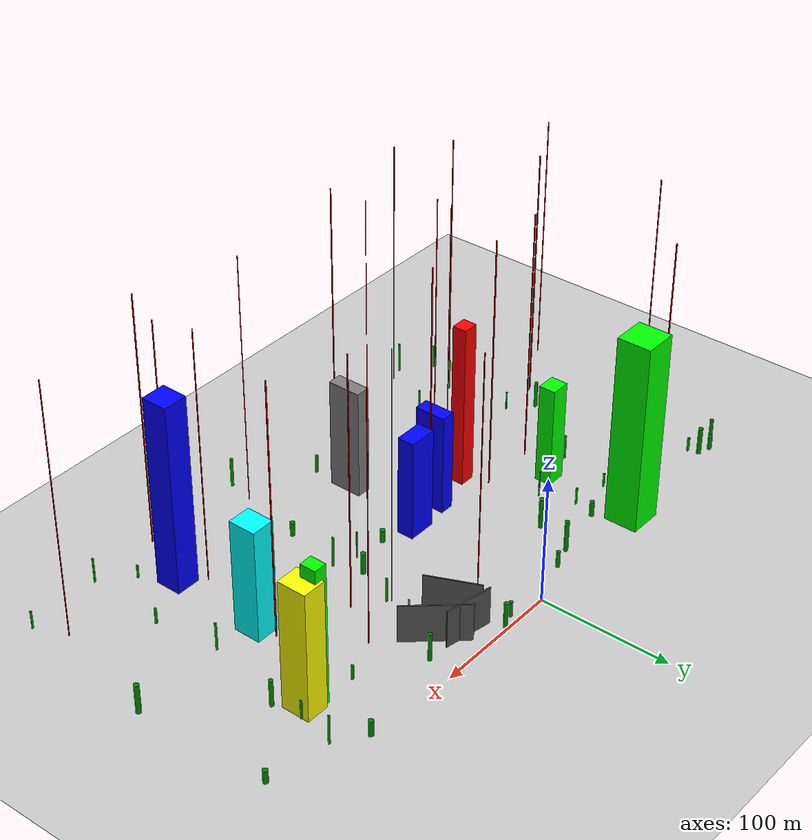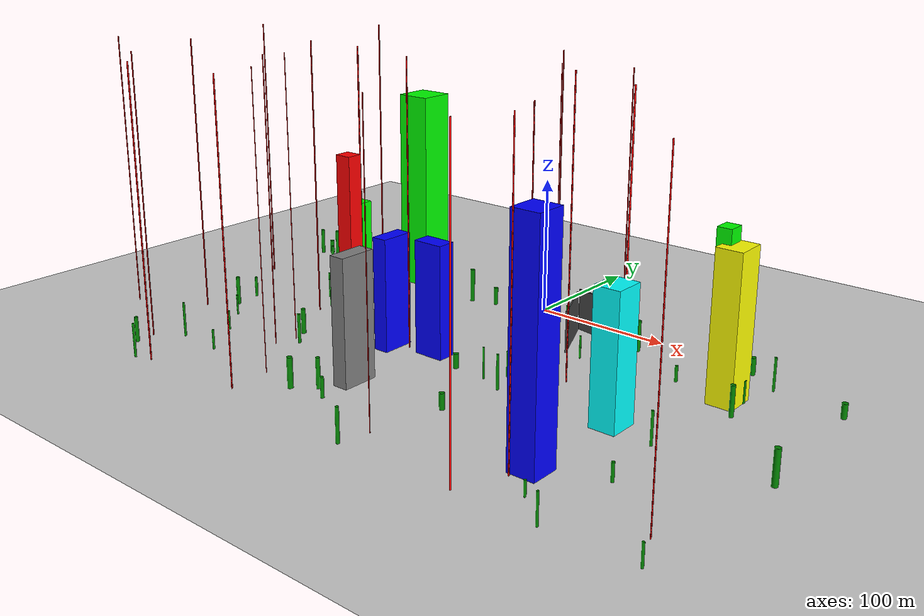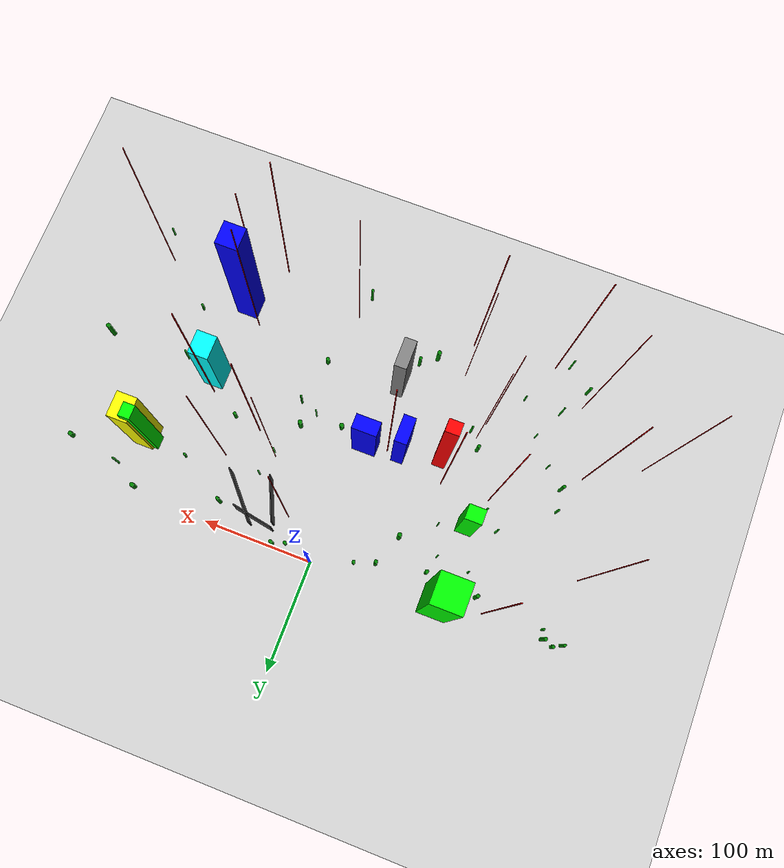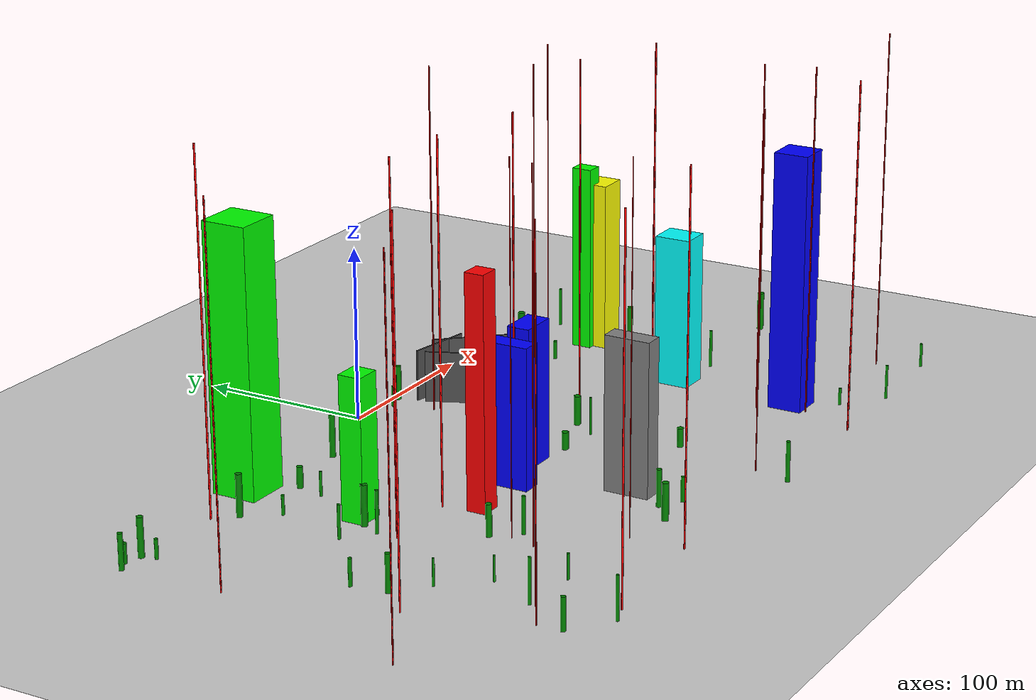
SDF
<sdf version="1.9">
 <world name="obstacles">
  <model name="ground_plane">
   <static>1</static>
   <link name="link">
    <collision name="collision">
     <geometry><plane><normal>0 0 1</normal><size>2000 2000</size></plane></geometry>
    </collision>
    <visual name="visual">
     <geometry><plane><normal>0 0 1</normal><size>2000 2000</size></plane></geometry>
     <material>
      <ambient>0.8 0.8 0.8 1</ambient>
      <diffuse>0.8 0.8 0.8 1</diffuse>
      <specular>0.8 0.8 0.8 1</specular>
     </material>
    </visual>
   </link>
  </model>
  <model name="Skyscraper_0">
   <pose>178 -54 50.5 0 0 0</pose>
   <static>1</static>
   <link name="link">
    <collision name="collision"><geometry><box><size>18 22 101</size></box></geometry></collision>
    <visual name="visual">
     <geometry><box><size>18 22 101</size></box></geometry>
     <material><ambient>1 1 0 1</ambient><diffuse>1 1 0 1</diffuse></material>
    </visual>
   </link>
  </model>
  <model name="Skyscraper_4">
   <pose>-17 -182 43.5 0 0 0</pose>
   <static>1</static>
   <link name="link">
    <collision name="collision"><geometry><box><size>11 26 87</size></box></geometry></collision>
    <visual name="visual">
     <geometry><box><size>11 26 87</size></box></geometry>
     <material><ambient>0.5 0.5 0.5 1</ambient><diffuse>0.5 0.5 0.5 1</diffuse></material>
    </visual>
   </link>
  </model>
  <model name="Skyscraper_7">
   <pose>-39 -123 40.0 0 0 0</pose>
   <static>1</static>
   <link name="link">
    <collision name="collision"><geometry><box><size>11 24 80</size></box></geometry></collision>
    <visual name="visual">
     <geometry><box><size>11 24 80</size></box></geometry>
     <material><ambient>0 0 1 1</ambient><diffuse>0 0 1 1</diffuse></material>
    </visual>
   </link>
  </model>
  <model name="Skyscraper_9">
   <pose>139 -202 75.0 0 0 0</pose>
   <static>1</static>
   <link name="link">
    <collision name="collision"><geometry><box><size>19 20 150</size></box></geometry></collision>
    <visual name="visual">
     <geometry><box><size>19 20 150</size></box></geometry>
     <material><ambient>0 0 1 1</ambient><diffuse>0 0 1 1</diffuse></material>
    </visual>
   </link>
  </model>
  <model name="Skyscraper_16">
   <pose>170 -51 55.5 0 0 0</pose>
   <static>1</static>
   <link name="link">
    <collision name="collision"><geometry><box><size>10 12 111</size></box></geometry></collision>
    <visual name="visual">
     <geometry><box><size>10 12 111</size></box></geometry>
     <material><ambient>0 1 0 1</ambient><diffuse>0 1 0 1</diffuse></material>
    </visual>
   </link>
  </model>
  <model name="Skyscraper_17">
   <pose>142 -128 44.5 0 0 0</pose>
   <static>1</static>
   <link name="link">
    <collision name="collision"><geometry><box><size>18 21 89</size></box></geometry></collision>
    <visual name="visual">
     <geometry><box><size>18 21 89</size></box></geometry>
     <material><ambient>0 1 1 1</ambient><diffuse>0 1 1 1</diffuse></material>
    </visual>
   </link>
  </model>
  <model name="Skyscraper_18">
   <pose>-114 -6 75.0 0 0 0</pose>
   <static>1</static>
   <link name="link">
    <collision name="collision"><geometry><box><size>26 26 150</size></box></geometry></collision>
    <visual name="visual">
     <geometry><box><size>26 26 150</size></box></geometry>
     <material><ambient>0 1 0 1</ambient><diffuse>0 1 0 1</diffuse></material>
    </visual>
   </link>
  </model>
  <model name="Skyscraper_19">
   <pose>-75 -126 65.0 0 0 0</pose>
   <static>1</static>
   <link name="link">
    <collision name="collision"><geometry><box><size>12 11 130</size></box></geometry></collision>
    <visual name="visual">
     <geometry><box><size>12 11 130</size></box></geometry>
     <material><ambient>1 0 0 1</ambient><diffuse>1 0 0 1</diffuse></material>
    </visual>
   </link>
  </model>
  <model name="Skyscraper_21">
   <pose>-116 -78 40.0 0 0 0</pose>
   <static>1</static>
   <link name="link">
    <collision name="collision"><geometry><box><size>15 13 80</size></box></geometry></collision>
    <visual name="visual">
     <geometry><box><size>15 13 80</size></box></geometry>
     <material><ambient>0 1 0 1</ambient><diffuse>0 1 0 1</diffuse></material>
    </visual>
   </link>
  </model>
  <model name="Skyscraper_24">
   <pose>-8 -115 40.0 0 0 0</pose>
   <static>1</static>
   <link name="link">
    <collision name="collision"><geometry><box><size>22 13 80</size></box></geometry></collision>
    <visual name="visual">
     <geometry><box><size>22 13 80</size></box></geometry>
     <material><ambient>0 0 1 1</ambient><diffuse>0 0 1 1</diffuse></material>
    </visual>
   </link>
  </model>
  <model name="Spire_3">
   <pose>-200 -156 100.0 0 0 0</pose>
   <static>1</static>
   <link name="link">
    <collision name="collision">
     <geometry><cylinder><radius>0.44581631200741345</radius><length>200</length></cylinder></geometry>
    </collision>
    <visual name="visual">
     <geometry><cylinder><radius>0.44581631200741345</radius><length>200</length></cylinder></geometry>
     <material><ambient>1 0 0 1</ambient><diffuse>1 0 0 1</diffuse></material>
    </visual>
   </link>
  </model>
  <model name="Spire_4">
   <pose>-224 -69 100.0 0 0 0</pose>
   <static>1</static>
   <link name="link">
    <collision name="collision">
     <geometry><cylinder><radius>0.3867186266921738</radius><length>200</length></cylinder></geometry>
    </collision>
    <visual name="visual">
     <geometry><cylinder><radius>0.3867186266921738</radius><length>200</length></cylinder></geometry>
     <material><ambient>1 0 0 1</ambient><diffuse>1 0 0 1</diffuse></material>
    </visual>
   </link>
  </model>
  <model name="Spire_7">
   <pose>133 -214 100.0 0 0 0</pose>
   <static>1</static>
   <link name="link">
    <collision name="collision">
     <geometry><cylinder><radius>0.4003074017150695</radius><length>200</length></cylinder></geometry>
    </collision>
    <visual name="visual">
     <geometry><cylinder><radius>0.4003074017150695</radius><length>200</length></cylinder></geometry>
     <material><ambient>1 0 0 1</ambient><diffuse>1 0 0 1</diffuse></material>
    </visual>
   </link>
  </model>
  <model name="Spire_10">
   <pose>106 -62 100.0 0 0 0</pose>
   <static>1</static>
   <link name="link">
    <collision name="collision">
     <geometry><cylinder><radius>0.33962730395507773</radius><length>200</length></cylinder></geometry>
    </collision>
    <visual name="visual">
     <geometry><cylinder><radius>0.33962730395507773</radius><length>200</length></cylinder></geometry>
     <material><ambient>1 0 0 1</ambient><diffuse>1 0 0 1</diffuse></material>
    </visual>
   </link>
  </model>
  <model name="Spire_14">
   <pose>-28 -118 100.0 0 0 0</pose>
   <static>1</static>
   <link name="link">
    <collision name="collision">
     <geometry><cylinder><radius>0.45911367101460715</radius><length>200</length></cylinder></geometry>
    </collision>
    <visual name="visual">
     <geometry><cylinder><radius>0.45911367101460715</radius><length>200</length></cylinder></geometry>
     <material><ambient>1 0 0 1</ambient><diffuse>1 0 0 1</diffuse></material>
    </visual>
   </link>
  </model>
  <model name="Spire_15">
   <pose>-70 -210 100.0 0 0 0</pose>
   <static>1</static>
   <link name="link">
    <collision name="collision">
     <geometry><cylinder><radius>0.21747525304132187</radius><length>200</length></cylinder></geometry>
    </collision>
    <visual name="visual">
     <geometry><cylinder><radius>0.21747525304132187</radius><length>200</length></cylinder></geometry>
     <material><ambient>1 0 0 1</ambient><diffuse>1 0 0 1</diffuse></material>
    </visual>
   </link>
  </model>
  <model name="Spire_16">
   <pose>-83 -107 100.0 0 0 0</pose>
   <static>1</static>
   <link name="link">
    <collision name="collision">
     <geometry><cylinder><radius>0.4890352460882555</radius><length>200</length></cylinder></geometry>
    </collision>
    <visual name="visual">
     <geometry><cylinder><radius>0.4890352460882555</radius><length>200</length></cylinder></geometry>
     <material><ambient>1 0 0 1</ambient><diffuse>1 0 0 1</diffuse></material>
    </visual>
   </link>
  </model>
  <model name="Spire_17">
   <pose>-145 -246 100.0 0 0 0</pose>
   <static>1</static>
   <link name="link">
    <collision name="collision">
     <geometry><cylinder><radius>0.47034292058402727</radius><length>200</length></cylinder></geometry>
    </collision>
    <visual name="visual">
     <geometry><cylinder><radius>0.47034292058402727</radius><length>200</length></cylinder></geometry>
     <material><ambient>1 0 0 1</ambient><diffuse>1 0 0 1</diffuse></material>
    </visual>
   </link>
  </model>
  <model name="Spire_19">
   <pose>-128 -108 100.0 0 0 0</pose>
   <static>1</static>
   <link name="link">
    <collision name="collision">
     <geometry><cylinder><radius>0.45270289470616354</radius><length>200</length></cylinder></geometry>
    </collision>
    <visual name="visual">
     <geometry><cylinder><radius>0.45270289470616354</radius><length>200</length></cylinder></geometry>
     <material><ambient>1 0 0 1</ambient><diffuse>1 0 0 1</diffuse></material>
    </visual>
   </link>
  </model>
  <model name="Spire_20">
   <pose>-248 -183 100.0 0 0 0</pose>
   <static>1</static>
   <link name="link">
    <collision name="collision">
     <geometry><cylinder><radius>0.34875254827759905</radius><length>200</length></cylinder></geometry>
    </collision>
    <visual name="visual">
     <geometry><cylinder><radius>0.34875254827759905</radius><length>200</length></cylinder></geometry>
     <material><ambient>1 0 0 1</ambient><diffuse>1 0 0 1</diffuse></material>
    </visual>
   </link>
  </model>
  <model name="Spire_21">
   <pose>139 -113 100.0 0 0 0</pose>
   <static>1</static>
   <link name="link">
    <collision name="collision">
     <geometry><cylinder><radius>0.48218072428795306</radius><length>200</length></cylinder></geometry>
    </collision>
    <visual name="visual">
     <geometry><cylinder><radius>0.48218072428795306</radius><length>200</length></cylinder></geometry>
     <material><ambient>1 0 0 1</ambient><diffuse>1 0 0 1</diffuse></material>
    </visual>
   </link>
  </model>
  <model name="Spire_23">
   <pose>-155 -12 100.0 0 0 0</pose>
   <static>1</static>
   <link name="link">
    <collision name="collision">
     <geometry><cylinder><radius>0.4816834138203816</radius><length>200</length></cylinder></geometry>
    </collision>
    <visual name="visual">
     <geometry><cylinder><radius>0.4816834138203816</radius><length>200</length></cylinder></geometry>
     <material><ambient>1 0 0 1</ambient><diffuse>1 0 0 1</diffuse></material>
    </visual>
   </link>
  </model>
  <model name="Spire_24">
   <pose>86 -94 100.0 0 0 0</pose>
   <static>1</static>
   <link name="link">
    <collision name="collision">
     <geometry><cylinder><radius>0.4521577670168428</radius><length>200</length></cylinder></geometry>
    </collision>
    <visual name="visual">
     <geometry><cylinder><radius>0.4521577670168428</radius><length>200</length></cylinder></geometry>
     <material><ambient>1 0 0 1</ambient><diffuse>1 0 0 1</diffuse></material>
    </visual>
   </link>
  </model>
  <model name="Spire_30">
   <pose>-103 -173 100.0 0 0 0</pose>
   <static>1</static>
   <link name="link">
    <collision name="collision">
     <geometry><cylinder><radius>0.29753795313489706</radius><length>200</length></cylinder></geometry>
    </collision>
    <visual name="visual">
     <geometry><cylinder><radius>0.29753795313489706</radius><length>200</length></cylinder></geometry>
     <material><ambient>1 0 0 1</ambient><diffuse>1 0 0 1</diffuse></material>
    </visual>
   </link>
  </model>
  <model name="Spire_32">
   <pose>224 -218 100.0 0 0 0</pose>
   <static>1</static>
   <link name="link">
    <collision name="collision">
     <geometry><cylinder><radius>0.3545172343501649</radius><length>200</length></cylinder></geometry>
    </collision>
    <visual name="visual">
     <geometry><cylinder><radius>0.3545172343501649</radius><length>200</length></cylinder></geometry>
     <material><ambient>1 0 0 1</ambient><diffuse>1 0 0 1</diffuse></material>
    </visual>
   </link>
  </model>
  <model name="Spire_33">
   <pose>-180 -219 100.0 0 0 0</pose>
   <static>1</static>
   <link name="link">
    <collision name="collision">
     <geometry><cylinder><radius>0.3727092924935774</radius><length>200</length></cylinder></geometry>
    </collision>
    <visual name="visual">
     <geometry><cylinder><radius>0.3727092924935774</radius><length>200</length></cylinder></geometry>
     <material><ambient>1 0 0 1</ambient><diffuse>1 0 0 1</diffuse></material>
    </visual>
   </link>
  </model>
  <model name="Spire_36">
   <pose>-68 -240 100.0 0 0 0</pose>
   <static>1</static>
   <link name="link">
    <collision name="collision">
     <geometry><cylinder><radius>0.4473573558580615</radius><length>200</length></cylinder></geometry>
    </collision>
    <visual name="visual">
     <geometry><cylinder><radius>0.4473573558580615</radius><length>200</length></cylinder></geometry>
     <material><ambient>1 0 0 1</ambient><diffuse>1 0 0 1</diffuse></material>
    </visual>
   </link>
  </model>
  <model name="Spire_41">
   <pose>64 -77 100.0 0 0 0</pose>
   <static>1</static>
   <link name="link">
    <collision name="collision">
     <geometry><cylinder><radius>0.24775819546895705</radius><length>200</length></cylinder></geometry>
    </collision>
    <visual name="visual">
     <geometry><cylinder><radius>0.24775819546895705</radius><length>200</length></cylinder></geometry>
     <material><ambient>1 0 0 1</ambient><diffuse>1 0 0 1</diffuse></material>
    </visual>
   </link>
  </model>
  <model name="Spire_42">
   <pose>119 -246 100.0 0 0 0</pose>
   <static>1</static>
   <link name="link">
    <collision name="collision">
     <geometry><cylinder><radius>0.46672014287727004</radius><length>200</length></cylinder></geometry>
    </collision>
    <visual name="visual">
     <geometry><cylinder><radius>0.46672014287727004</radius><length>200</length></cylinder></geometry>
     <material><ambient>1 0 0 1</ambient><diffuse>1 0 0 1</diffuse></material>
    </visual>
   </link>
  </model>
  <model name="Spire_43">
   <pose>32 -30 100.0 0 0 0</pose>
   <static>1</static>
   <link name="link">
    <collision name="collision">
     <geometry><cylinder><radius>0.382958132884067</radius><length>200</length></cylinder></geometry>
    </collision>
    <visual name="visual">
     <geometry><cylinder><radius>0.382958132884067</radius><length>200</length></cylinder></geometry>
     <material><ambient>1 0 0 1</ambient><diffuse>1 0 0 1</diffuse></material>
    </visual>
   </link>
  </model>
  <model name="Spire_45">
   <pose>-99 -158 100.0 0 0 0</pose>
   <static>1</static>
   <link name="link">
    <collision name="collision">
     <geometry><cylinder><radius>0.24139794060250905</radius><length>200</length></cylinder></geometry>
    </collision>
    <visual name="visual">
     <geometry><cylinder><radius>0.24139794060250905</radius><length>200</length></cylinder></geometry>
     <material><ambient>1 0 0 1</ambient><diffuse>1 0 0 1</diffuse></material>
    </visual>
   </link>
  </model>
  <model name="Spire_46">
   <pose>125 -187 100.0 0 0 0</pose>
   <static>1</static>
   <link name="link">
    <collision name="collision">
     <geometry><cylinder><radius>0.3491397350114776</radius><length>200</length></cylinder></geometry>
    </collision>
    <visual name="visual">
     <geometry><cylinder><radius>0.3491397350114776</radius><length>200</length></cylinder></geometry>
     <material><ambient>1 0 0 1</ambient><diffuse>1 0 0 1</diffuse></material>
    </visual>
   </link>
  </model>
  <model name="Spire_49">
   <pose>41 -227 100.0 0 0 0</pose>
   <static>1</static>
   <link name="link">
    <collision name="collision">
     <geometry><cylinder><radius>0.26238059529766616</radius><length>200</length></cylinder></geometry>
    </collision>
    <visual name="visual">
     <geometry><cylinder><radius>0.26238059529766616</radius><length>200</length></cylinder></geometry>
     <material><ambient>1 0 0 1</ambient><diffuse>1 0 0 1</diffuse></material>
    </visual>
   </link>
  </model>
  <model name="Tree_0">
   <pose>234 -242 7.0 0 0 0</pose>
   <static>1</static>
   <link name="link">
    <collision name="collision">
     <geometry><cylinder><radius>0.7775662024568268</radius><length>14</length></cylinder></geometry>
    </collision>
    <visual name="visual">
     <geometry><cylinder><radius>0.7775662024568268</radius><length>14</length></cylinder></geometry>
     <material><ambient>0 0.5 0 1</ambient><diffuse>0 0.5 0 1</diffuse></material>
    </visual>
   </link>
  </model>
  <model name="Tree_1">
   <pose>-162 -205 12.5 0 0 0</pose>
   <static>1</static>
   <link name="link">
    <collision name="collision">
     <geometry><cylinder><radius>0.7847532740561793</radius><length>25</length></cylinder></geometry>
    </collision>
    <visual name="visual">
     <geometry><cylinder><radius>0.7847532740561793</radius><length>25</length></cylinder></geometry>
     <material><ambient>0 0.5 0 1</ambient><diffuse>0 0.5 0 1</diffuse></material>
    </visual>
   </link>
  </model>
  <model name="Tree_2">
   <pose>18 -123 5.0 0 0 0</pose>
   <static>1</static>
   <link name="link">
    <collision name="collision">
     <geometry><cylinder><radius>1.9860177778806496</radius><length>10</length></cylinder></geometry>
    </collision>
    <visual name="visual">
     <geometry><cylinder><radius>1.9860177778806496</radius><length>10</length></cylinder></geometry>
     <material><ambient>0 0.5 0 1</ambient><diffuse>0 0.5 0 1</diffuse></material>
    </visual>
   </link>
  </model>
  <model name="Tree_3">
   <pose>-148 -177 7.0 0 0 0</pose>
   <static>1</static>
   <link name="link">
    <collision name="collision">
     <geometry><cylinder><radius>0.6288832305850341</radius><length>14</length></cylinder></geometry>
    </collision>
    <visual name="visual">
     <geometry><cylinder><radius>0.6288832305850341</radius><length>14</length></cylinder></geometry>
     <material><ambient>0 0.5 0 1</ambient><diffuse>0 0.5 0 1</diffuse></material>
    </visual>
   </link>
  </model>
  <model name="Tree_4">
   <pose>94 -21 11.0 0 0 0</pose>
   <static>1</static>
   <link name="link">
    <collision name="collision">
     <geometry><cylinder><radius>1.4907200034802457</radius><length>22</length></cylinder></geometry>
    </collision>
    <visual name="visual">
     <geometry><cylinder><radius>1.4907200034802457</radius><length>22</length></cylinder></geometry>
     <material><ambient>0 0.5 0 1</ambient><diffuse>0 0.5 0 1</diffuse></material>
    </visual>
   </link>
  </model>
  <model name="Tree_6">
   <pose>43 -125 11.0 0 0 0</pose>
   <static>1</static>
   <link name="link">
    <collision name="collision">
     <geometry><cylinder><radius>0.6350662108455527</radius><length>22</length></cylinder></geometry>
    </collision>
    <visual name="visual">
     <geometry><cylinder><radius>0.6350662108455527</radius><length>22</length></cylinder></geometry>
     <material><ambient>0 0.5 0 1</ambient><diffuse>0 0.5 0 1</diffuse></material>
    </visual>
   </link>
  </model>
  <model name="Tree_14">
   <pose>71 -57 8.0 0 0 0</pose>
   <static>1</static>
   <link name="link">
    <collision name="collision">
     <geometry><cylinder><radius>0.6698129040329539</radius><length>16</length></cylinder></geometry>
    </collision>
    <visual name="visual">
     <geometry><cylinder><radius>0.6698129040329539</radius><length>16</length></cylinder></geometry>
     <material><ambient>0 0.5 0 1</ambient><diffuse>0 0.5 0 1</diffuse></material>
    </visual>
   </link>
  </model>
  <model name="Tree_16">
   <pose>-41 -215 10.5 0 0 0</pose>
   <static>1</static>
   <link name="link">
    <collision name="collision">
     <geometry><cylinder><radius>1.8909082507885777</radius><length>21</length></cylinder></geometry>
    </collision>
    <visual name="visual">
     <geometry><cylinder><radius>1.8909082507885777</radius><length>21</length></cylinder></geometry>
     <material><ambient>0 0.5 0 1</ambient><diffuse>0 0.5 0 1</diffuse></material>
    </visual>
   </link>
  </model>
  <model name="Tree_20">
   <pose>-145 -23 12.0 0 0 0</pose>
   <static>1</static>
   <link name="link">
    <collision name="collision">
     <geometry><cylinder><radius>1.766316491938379</radius><length>24</length></cylinder></geometry>
    </collision>
    <visual name="visual">
     <geometry><cylinder><radius>1.766316491938379</radius><length>24</length></cylinder></geometry>
     <material><ambient>0 0.5 0 1</ambient><diffuse>0 0.5 0 1</diffuse></material>
    </visual>
   </link>
  </model>
  <model name="Tree_21">
   <pose>-187 -119 7.5 0 0 0</pose>
   <static>1</static>
   <link name="link">
    <collision name="collision">
     <geometry><cylinder><radius>1.040240469659246</radius><length>15</length></cylinder></geometry>
    </collision>
    <visual name="visual">
     <geometry><cylinder><radius>1.040240469659246</radius><length>15</length></cylinder></geometry>
     <material><ambient>0 0.5 0 1</ambient><diffuse>0 0.5 0 1</diffuse></material>
    </visual>
   </link>
  </model>
  <model name="Tree_26">
   <pose>-27 -204 10.5 0 0 0</pose>
   <static>1</static>
   <link name="link">
    <collision name="collision">
     <geometry><cylinder><radius>1.393169470820165</radius><length>21</length></cylinder></geometry>
    </collision>
    <visual name="visual">
     <geometry><cylinder><radius>1.393169470820165</radius><length>21</length></cylinder></geometry>
     <material><ambient>0 0.5 0 1</ambient><diffuse>0 0.5 0 1</diffuse></material>
    </visual>
   </link>
  </model>
  <model name="Tree_27">
   <pose>193 -21 11.5 0 0 0</pose>
   <static>1</static>
   <link name="link">
    <collision name="collision">
     <geometry><cylinder><radius>0.8534102228093803</radius><length>23</length></cylinder></geometry>
    </collision>
    <visual name="visual">
     <geometry><cylinder><radius>0.8534102228093803</radius><length>23</length></cylinder></geometry>
     <material><ambient>0 0.5 0 1</ambient><diffuse>0 0.5 0 1</diffuse></material>
    </visual>
   </link>
  </model>
  <model name="Tree_31">
   <pose>-93 -70 10.5 0 0 0</pose>
   <static>1</static>
   <link name="link">
    <collision name="collision">
     <geometry><cylinder><radius>0.5653269855124452</radius><length>21</length></cylinder></geometry>
    </collision>
    <visual name="visual">
     <geometry><cylinder><radius>0.5653269855124452</radius><length>21</length></cylinder></geometry>
     <material><ambient>0 0.5 0 1</ambient><diffuse>0 0.5 0 1</diffuse></material>
    </visual>
   </link>
  </model>
  <model name="Tree_32">
   <pose>-65 -48 12.0 0 0 0</pose>
   <static>1</static>
   <link name="link">
    <collision name="collision">
     <geometry><cylinder><radius>1.9834267167731139</radius><length>24</length></cylinder></geometry>
    </collision>
    <visual name="visual">
     <geometry><cylinder><radius>1.9834267167731139</radius><length>24</length></cylinder></geometry>
     <material><ambient>0 0.5 0 1</ambient><diffuse>0 0.5 0 1</diffuse></material>
    </visual>
   </link>
  </model>
  <model name="Tree_33">
   <pose>-15 -212 7.0 0 0 0</pose>
   <static>1</static>
   <link name="link">
    <collision name="collision">
     <geometry><cylinder><radius>1.26687505403598</radius><length>14</length></cylinder></geometry>
    </collision>
    <visual name="visual">
     <geometry><cylinder><radius>1.26687505403598</radius><length>14</length></cylinder></geometry>
     <material><ambient>0 0.5 0 1</ambient><diffuse>0 0.5 0 1</diffuse></material>
    </visual>
   </link>
  </model>
  <model name="Tree_36">
   <pose>36 -248 11.5 0 0 0</pose>
   <static>1</static>
   <link name="link">
    <collision name="collision">
     <geometry><cylinder><radius>1.183375175855891</radius><length>23</length></cylinder></geometry>
    </collision>
    <visual name="visual">
     <geometry><cylinder><radius>1.183375175855891</radius><length>23</length></cylinder></geometry>
     <material><ambient>0 0.5 0 1</ambient><diffuse>0 0.5 0 1</diffuse></material>
    </visual>
   </link>
  </model>
  <model name="Tree_39">
   <pose>-92 -161 10.5 0 0 0</pose>
   <static>1</static>
   <link name="link">
    <collision name="collision">
     <geometry><cylinder><radius>1.0595311579305604</radius><length>21</length></cylinder></geometry>
    </collision>
    <visual name="visual">
     <geometry><cylinder><radius>1.0595311579305604</radius><length>21</length></cylinder></geometry>
     <material><ambient>0 0.5 0 1</ambient><diffuse>0 0.5 0 1</diffuse></material>
    </visual>
   </link>
  </model>
  <model name="Tree_41">
   <pose>26 -7 6.0 0 0 0</pose>
   <static>1</static>
   <link name="link">
    <collision name="collision">
     <geometry><cylinder><radius>1.3879879858428446</radius><length>12</length></cylinder></geometry>
    </collision>
    <visual name="visual">
     <geometry><cylinder><radius>1.3879879858428446</radius><length>12</length></cylinder></geometry>
     <material><ambient>0 0.5 0 1</ambient><diffuse>0 0.5 0 1</diffuse></material>
    </visual>
   </link>
  </model>
  <model name="Tree_43">
   <pose>186 -49 7.5 0 0 0</pose>
   <static>1</static>
   <link name="link">
    <collision name="collision">
     <geometry><cylinder><radius>1.597617543201193</radius><length>15</length></cylinder></geometry>
    </collision>
    <visual name="visual">
     <geometry><cylinder><radius>1.597617543201193</radius><length>15</length></cylinder></geometry>
     <material><ambient>0 0.5 0 1</ambient><diffuse>0 0.5 0 1</diffuse></material>
    </visual>
   </link>
  </model>
  <model name="Tree_45">
   <pose>-128 -96 12.0 0 0 0</pose>
   <static>1</static>
   <link name="link">
    <collision name="collision">
     <geometry><cylinder><radius>0.9171181304450537</radius><length>24</length></cylinder></geometry>
    </collision>
    <visual name="visual">
     <geometry><cylinder><radius>0.9171181304450537</radius><length>24</length></cylinder></geometry>
     <material><ambient>0 0.5 0 1</ambient><diffuse>0 0.5 0 1</diffuse></material>
    </visual>
   </link>
  </model>
  <model name="Tree_46">
   <pose>179 -183 6.0 0 0 0</pose>
   <static>1</static>
   <link name="link">
    <collision name="collision">
     <geometry><cylinder><radius>1.0154934856984967</radius><length>12</length></cylinder></geometry>
    </collision>
    <visual name="visual">
     <geometry><cylinder><radius>1.0154934856984967</radius><length>12</length></cylinder></geometry>
     <material><ambient>0 0.5 0 1</ambient><diffuse>0 0.5 0 1</diffuse></material>
    </visual>
   </link>
  </model>
  <model name="Tree_47">
   <pose>-227 -11 10.0 0 0 0</pose>
   <static>1</static>
   <link name="link">
    <collision name="collision">
     <geometry><cylinder><radius>1.380542118087094</radius><length>20</length></cylinder></geometry>
    </collision>
    <visual name="visual">
     <geometry><cylinder><radius>1.380542118087094</radius><length>20</length></cylinder></geometry>
     <material><ambient>0 0.5 0 1</ambient><diffuse>0 0.5 0 1</diffuse></material>
    </visual>
   </link>
  </model>
  <model name="Tree_49">
   <pose>242 -29 5.0 0 0 0</pose>
   <static>1</static>
   <link name="link">
    <collision name="collision">
     <geometry><cylinder><radius>1.9155713073522613</radius><length>10</length></cylinder></geometry>
    </collision>
    <visual name="visual">
     <geometry><cylinder><radius>1.9155713073522613</radius><length>10</length></cylinder></geometry>
     <material><ambient>0 0.5 0 1</ambient><diffuse>0 0.5 0 1</diffuse></material>
    </visual>
   </link>
  </model>
  <model name="Tree_50">
   <pose>-36 -13 6.5 0 0 0</pose>
   <static>1</static>
   <link name="link">
    <collision name="collision">
     <geometry><cylinder><radius>1.5182735003644499</radius><length>13</length></cylinder></geometry>
    </collision>
    <visual name="visual">
     <geometry><cylinder><radius>1.5182735003644499</radius><length>13</length></cylinder></geometry>
     <material><ambient>0 0.5 0 1</ambient><diffuse>0 0.5 0 1</diffuse></material>
    </visual>
   </link>
  </model>
  <model name="Tree_51">
   <pose>-220 -7 5.5 0 0 0</pose>
   <static>1</static>
   <link name="link">
    <collision name="collision">
     <geometry><cylinder><radius>1.6522793023084992</radius><length>11</length></cylinder></geometry>
    </collision>
    <visual name="visual">
     <geometry><cylinder><radius>1.6522793023084992</radius><length>11</length></cylinder></geometry>
     <material><ambient>0 0.5 0 1</ambient><diffuse>0 0.5 0 1</diffuse></material>
    </visual>
   </link>
  </model>
  <model name="Tree_53">
   <pose>-103 -147 9.0 0 0 0</pose>
   <static>1</static>
   <link name="link">
    <collision name="collision">
     <geometry><cylinder><radius>1.6198481323214473</radius><length>18</length></cylinder></geometry>
    </collision>
    <visual name="visual">
     <geometry><cylinder><radius>1.6198481323214473</radius><length>18</length></cylinder></geometry>
     <material><ambient>0 0.5 0 1</ambient><diffuse>0 0.5 0 1</diffuse></material>
    </visual>
   </link>
  </model>
  <model name="Tree_55">
   <pose>-184 -139 10.5 0 0 0</pose>
   <static>1</static>
   <link name="link">
    <collision name="collision">
     <geometry><cylinder><radius>1.437297068167199</radius><length>21</length></cylinder></geometry>
    </collision>
    <visual name="visual">
     <geometry><cylinder><radius>1.437297068167199</radius><length>21</length></cylinder></geometry>
     <material><ambient>0 0.5 0 1</ambient><diffuse>0 0.5 0 1</diffuse></material>
    </visual>
   </link>
  </model>
  <model name="Tree_60">
   <pose>-179 -233 9.0 0 0 0</pose>
   <static>1</static>
   <link name="link">
    <collision name="collision">
     <geometry><cylinder><radius>1.361256453452036</radius><length>18</length></cylinder></geometry>
    </collision>
    <visual name="visual">
     <geometry><cylinder><radius>1.361256453452036</radius><length>18</length></cylinder></geometry>
     <material><ambient>0 0.5 0 1</ambient><diffuse>0 0.5 0 1</diffuse></material>
    </visual>
   </link>
  </model>
  <model name="Tree_61">
   <pose>-210 -10 11.0 0 0 0</pose>
   <static>1</static>
   <link name="link">
    <collision name="collision">
     <geometry><cylinder><radius>1.7277672711020782</radius><length>22</length></cylinder></geometry>
    </collision>
    <visual name="visual">
     <geometry><cylinder><radius>1.7277672711020782</radius><length>22</length></cylinder></geometry>
     <material><ambient>0 0.5 0 1</ambient><diffuse>0 0.5 0 1</diffuse></material>
    </visual>
   </link>
  </model>
  <model name="Tree_63">
   <pose>-167 -154 7.5 0 0 0</pose>
   <static>1</static>
   <link name="link">
    <collision name="collision">
     <geometry><cylinder><radius>0.6524967599424123</radius><length>15</length></cylinder></geometry>
    </collision>
    <visual name="visual">
     <geometry><cylinder><radius>0.6524967599424123</radius><length>15</length></cylinder></geometry>
     <material><ambient>0 0.5 0 1</ambient><diffuse>0 0.5 0 1</diffuse></material>
    </visual>
   </link>
  </model>
  <model name="Tree_64">
   <pose>175 -245 10.0 0 0 0</pose>
   <static>1</static>
   <link name="link">
    <collision name="collision">
     <geometry><cylinder><radius>0.7455067019268864</radius><length>20</length></cylinder></geometry>
    </collision>
    <visual name="visual">
     <geometry><cylinder><radius>0.7455067019268864</radius><length>20</length></cylinder></geometry>
     <material><ambient>0 0.5 0 1</ambient><diffuse>0 0.5 0 1</diffuse></material>
    </visual>
   </link>
  </model>
  <model name="Tree_65">
   <pose>247 -131 11.5 0 0 0</pose>
   <static>1</static>
   <link name="link">
    <collision name="collision">
     <geometry><cylinder><radius>1.948312115244621</radius><length>23</length></cylinder></geometry>
    </collision>
    <visual name="visual">
     <geometry><cylinder><radius>1.948312115244621</radius><length>23</length></cylinder></geometry>
     <material><ambient>0 0.5 0 1</ambient><diffuse>0 0.5 0 1</diffuse></material>
    </visual>
   </link>
  </model>
  <model name="Tree_67">
   <pose>173 -134 11.0 0 0 0</pose>
   <static>1</static>
   <link name="link">
    <collision name="collision">
     <geometry><cylinder><radius>0.8549202699564206</radius><length>22</length></cylinder></geometry>
    </collision>
    <visual name="visual">
     <geometry><cylinder><radius>0.8549202699564206</radius><length>22</length></cylinder></geometry>
     <material><ambient>0 0.5 0 1</ambient><diffuse>0 0.5 0 1</diffuse></material>
    </visual>
   </link>
  </model>
  <model name="Tree_68">
   <pose>139 -48 5.5 0 0 0</pose>
   <static>1</static>
   <link name="link">
    <collision name="collision">
     <geometry><cylinder><radius>1.0543752892337053</radius><length>11</length></cylinder></geometry>
    </collision>
    <visual name="visual">
     <geometry><cylinder><radius>1.0543752892337053</radius><length>11</length></cylinder></geometry>
     <material><ambient>0 0.5 0 1</ambient><diffuse>0 0.5 0 1</diffuse></material>
    </visual>
   </link>
  </model>
  <model name="Tree_71">
   <pose>153 -226 5.0 0 0 0</pose>
   <static>1</static>
   <link name="link">
    <collision name="collision">
     <geometry><cylinder><radius>0.8141327513427581</radius><length>10</length></cylinder></geometry>
    </collision>
    <visual name="visual">
     <geometry><cylinder><radius>0.8141327513427581</radius><length>10</length></cylinder></geometry>
     <material><ambient>0 0.5 0 1</ambient><diffuse>0 0.5 0 1</diffuse></material>
    </visual>
   </link>
  </model>
  <model name="Tree_72">
   <pose>-143 -83 9.5 0 0 0</pose>
   <static>1</static>
   <link name="link">
    <collision name="collision">
     <geometry><cylinder><radius>0.8855303907357068</radius><length>19</length></cylinder></geometry>
    </collision>
    <visual name="visual">
     <geometry><cylinder><radius>0.8855303907357068</radius><length>19</length></cylinder></geometry>
     <material><ambient>0 0.5 0 1</ambient><diffuse>0 0.5 0 1</diffuse></material>
    </visual>
   </link>
  </model>
  <model name="Tree_73">
   <pose>52 -176 5.5 0 0 0</pose>
   <static>1</static>
   <link name="link">
    <collision name="collision">
     <geometry><cylinder><radius>1.7947547894720122</radius><length>11</length></cylinder></geometry>
    </collision>
    <visual name="visual">
     <geometry><cylinder><radius>1.7947547894720122</radius><length>11</length></cylinder></geometry>
     <material><ambient>0 0.5 0 1</ambient><diffuse>0 0.5 0 1</diffuse></material>
    </visual>
   </link>
  </model>
  <model name="Tree_75">
   <pose>-123 -85 11.5 0 0 0</pose>
   <static>1</static>
   <link name="link">
    <collision name="collision">
     <geometry><cylinder><radius>1.8188268863102215</radius><length>23</length></cylinder></geometry>
    </collision>
    <visual name="visual">
     <geometry><cylinder><radius>1.8188268863102215</radius><length>23</length></cylinder></geometry>
     <material><ambient>0 0.5 0 1</ambient><diffuse>0 0.5 0 1</diffuse></material>
    </visual>
   </link>
  </model>
  <model name="Tree_76">
   <pose>-102 -44 7.0 0 0 0</pose>
   <static>1</static>
   <link name="link">
    <collision name="collision">
     <geometry><cylinder><radius>0.7864474677683548</radius><length>14</length></cylinder></geometry>
    </collision>
    <visual name="visual">
     <geometry><cylinder><radius>0.7864474677683548</radius><length>14</length></cylinder></geometry>
     <material><ambient>0 0.5 0 1</ambient><diffuse>0 0.5 0 1</diffuse></material>
    </visual>
   </link>
  </model>
  <model name="Tree_78">
   <pose>-132 -41 5.5 0 0 0</pose>
   <static>1</static>
   <link name="link">
    <collision name="collision">
     <geometry><cylinder><radius>0.8583448241542828</radius><length>11</length></cylinder></geometry>
    </collision>
    <visual name="visual">
     <geometry><cylinder><radius>0.8583448241542828</radius><length>11</length></cylinder></geometry>
     <material><ambient>0 0.5 0 1</ambient><diffuse>0 0.5 0 1</diffuse></material>
    </visual>
   </link>
  </model>
  <model name="Tree_80">
   <pose>190 -71 10.5 0 0 0</pose>
   <static>1</static>
   <link name="link">
    <collision name="collision">
     <geometry><cylinder><radius>1.5519791651143318</radius><length>21</length></cylinder></geometry>
    </collision>
    <visual name="visual">
     <geometry><cylinder><radius>1.5519791651143318</radius><length>21</length></cylinder></geometry>
     <material><ambient>0 0.5 0 1</ambient><diffuse>0 0.5 0 1</diffuse></material>
    </visual>
   </link>
  </model>
  <model name="Tree_82">
   <pose>-54 -19 12.5 0 0 0</pose>
   <static>1</static>
   <link name="link">
    <collision name="collision">
     <geometry><cylinder><radius>1.6473413824063938</radius><length>25</length></cylinder></geometry>
    </collision>
    <visual name="visual">
     <geometry><cylinder><radius>1.6473413824063938</radius><length>25</length></cylinder></geometry>
     <material><ambient>0 0.5 0 1</ambient><diffuse>0 0.5 0 1</diffuse></material>
    </visual>
   </link>
  </model>
  <model name="Tree_83">
   <pose>171 -6 6.0 0 0 0</pose>
   <static>1</static>
   <link name="link">
    <collision name="collision">
     <geometry><cylinder><radius>1.9790775610238023</radius><length>12</length></cylinder></geometry>
    </collision>
    <visual name="visual">
     <geometry><cylinder><radius>1.9790775610238023</radius><length>12</length></cylinder></geometry>
     <material><ambient>0 0.5 0 1</ambient><diffuse>0 0.5 0 1</diffuse></material>
    </visual>
   </link>
  </model>
  <model name="Tree_85">
   <pose>-208 -18 5.5 0 0 0</pose>
   <static>1</static>
   <link name="link">
    <collision name="collision">
     <geometry><cylinder><radius>1.0267715324978781</radius><length>11</length></cylinder></geometry>
    </collision>
    <visual name="visual">
     <geometry><cylinder><radius>1.0267715324978781</radius><length>11</length></cylinder></geometry>
     <material><ambient>0 0.5 0 1</ambient><diffuse>0 0.5 0 1</diffuse></material>
    </visual>
   </link>
  </model>
  <model name="Tree_90">
   <pose>53 -111 8.5 0 0 0</pose>
   <static>1</static>
   <link name="link">
    <collision name="collision">
     <geometry><cylinder><radius>1.9422088380251148</radius><length>17</length></cylinder></geometry>
    </collision>
    <visual name="visual">
     <geometry><cylinder><radius>1.9422088380251148</radius><length>17</length></cylinder></geometry>
     <material><ambient>0 0.5 0 1</ambient><diffuse>0 0.5 0 1</diffuse></material>
    </visual>
   </link>
  </model>
  <model name="Tree_92">
   <pose>60 -132 12.0 0 0 0</pose>
   <static>1</static>
   <link name="link">
    <collision name="collision">
     <geometry><cylinder><radius>0.9247403367752601</radius><length>24</length></cylinder></geometry>
    </collision>
    <visual name="visual">
     <geometry><cylinder><radius>0.9247403367752601</radius><length>24</length></cylinder></geometry>
     <material><ambient>0 0.5 0 1</ambient><diffuse>0 0.5 0 1</diffuse></material>
    </visual>
   </link>
  </model>
  <model name="Tree_93">
   <pose>37 -3 10.0 0 0 0</pose>
   <static>1</static>
   <link name="link">
    <collision name="collision">
     <geometry><cylinder><radius>1.5968545506282723</radius><length>20</length></cylinder></geometry>
    </collision>
    <visual name="visual">
     <geometry><cylinder><radius>1.5968545506282723</radius><length>20</length></cylinder></geometry>
     <material><ambient>0 0.5 0 1</ambient><diffuse>0 0.5 0 1</diffuse></material>
    </visual>
   </link>
  </model>
  <model name="Tree_94">
   <pose>-128 -207 7.0 0 0 0</pose>
   <static>1</static>
   <link name="link">
    <collision name="collision">
     <geometry><cylinder><radius>0.7657910662892765</radius><length>14</length></cylinder></geometry>
    </collision>
    <visual name="visual">
     <geometry><cylinder><radius>0.7657910662892765</radius><length>14</length></cylinder></geometry>
     <material><ambient>0 0.5 0 1</ambient><diffuse>0 0.5 0 1</diffuse></material>
    </visual>
   </link>
  </model>
  <model name="Tree_95">
   <pose>66 -80 9.5 0 0 0</pose>
   <static>1</static>
   <link name="link">
    <collision name="collision">
     <geometry><cylinder><radius>0.8590075957994272</radius><length>19</length></cylinder></geometry>
    </collision>
    <visual name="visual">
     <geometry><cylinder><radius>0.8590075957994272</radius><length>19</length></cylinder></geometry>
     <material><ambient>0 0.5 0 1</ambient><diffuse>0 0.5 0 1</diffuse></material>
    </visual>
   </link>
  </model>
  <model name="Tree_96">
   <pose>111 -98 7.0 0 0 0</pose>
   <static>1</static>
   <link name="link">
    <collision name="collision">
     <geometry><cylinder><radius>1.3651588196158224</radius><length>14</length></cylinder></geometry>
    </collision>
    <visual name="visual">
     <geometry><cylinder><radius>1.3651588196158224</radius><length>14</length></cylinder></geometry>
     <material><ambient>0 0.5 0 1</ambient><diffuse>0 0.5 0 1</diffuse></material>
    </visual>
   </link>
  </model>
  <model name="Tree_97">
   <pose>-157 -250 12.0 0 0 0</pose>
   <static>1</static>
   <link name="link">
    <collision name="collision">
     <geometry><cylinder><radius>0.7985250862851325</radius><length>24</length></cylinder></geometry>
    </collision>
    <visual name="visual">
     <geometry><cylinder><radius>0.7985250862851325</radius><length>24</length></cylinder></geometry>
     <material><ambient>0 0.5 0 1</ambient><diffuse>0 0.5 0 1</diffuse></material>
    </visual>
   </link>
  </model>
  <model name="Tree_98">
   <pose>-98 -28 6.0 0 0 0</pose>
   <static>1</static>
   <link name="link">
    <collision name="collision">
     <geometry><cylinder><radius>1.7857339840249036</radius><length>12</length></cylinder></geometry>
    </collision>
    <visual name="visual">
     <geometry><cylinder><radius>1.7857339840249036</radius><length>12</length></cylinder></geometry>
     <material><ambient>0 0.5 0 1</ambient><diffuse>0 0.5 0 1</diffuse></material>
    </visual>
   </link>
  </model>
  <model name="Wall_0">
   <pose>59 -17 15 0 0 1.394733757711454</pose>
   <static>1</static>
   <link name="link">
    <collision name="collision"><geometry><box><size>1 38 30</size></box></geometry></collision>
    <visual name="visual">
     <geometry><box><size>1 38 30</size></box></geometry>
     <material><ambient>0.3 0.3 0.3 1</ambient><diffuse>0.3 0.3 0.3 1</diffuse></material>
    </visual>
   </link>
  </model>
  <model name="Wall_3">
   <pose>77 -30 15 0 0 0.72270813676339</pose>
   <static>1</static>
   <link name="link">
    <collision name="collision"><geometry><box><size>1 50 30</size></box></geometry></collision>
    <visual name="visual">
     <geometry><box><size>1 50 30</size></box></geometry>
     <material><ambient>0.3 0.3 0.3 1</ambient><diffuse>0.3 0.3 0.3 1</diffuse></material>
    </visual>
   </link>
  </model>
  <model name="Wall_4">
   <pose>50 -37 15 0 0 0.41881144337302545</pose>
   <static>1</static>
   <link name="link">
    <collision name="collision"><geometry><box><size>1 41 30</size></box></geometry></collision>
    <visual name="visual">
     <geometry><box><size>1 41 30</size></box></geometry>
     <material><ambient>0.3 0.3 0.3 1</ambient><diffuse>0.3 0.3 0.3 1</diffuse></material>
    </visual>
   </link>
  </model>
  <model name="obs_takeoff">
   <static>true</static>
   <pose>-9 -9 2.0 0 -0.3045 0.7854</pose>
   <link name="l">
    <sensor name="c" type="camera">
     <camera>
      <horizontal_fov>1.15</horizontal_fov>
      <image><width>1920</width><height>1080</height></image>
      <clip><near>0.1</near><far>1200</far></clip>
     </camera>
     <always_on>1</always_on>
     <update_rate>2</update_rate>
     <topic>obs/takeoff</topic>
    </sensor>
   </link>
  </model>
  <model name="obs_close3q">
   <static>true</static>
   <pose>-16 -16 7.0 0 -0.0743 0.7854</pose>
   <link name="l">
    <sensor name="c" type="camera">
     <camera>
      <horizontal_fov>1.1</horizontal_fov>
      <image><width>1920</width><height>1080</height></image>
      <clip><near>0.1</near><far>1200</far></clip>
     </camera>
     <always_on>1</always_on>
     <update_rate>2</update_rate>
     <topic>obs/close3q</topic>
    </sensor>
   </link>
  </model>
  <model name="obs_lateral">
   <static>true</static>
   <pose>12.5 -32 10.5 0 0.0112 1.5708</pose>
   <link name="l">
    <sensor name="c" type="camera">
     <camera>
      <horizontal_fov>1.0</horizontal_fov>
      <image><width>1920</width><height>1080</height></image>
      <clip><near>0.1</near><far>1200</far></clip>
     </camera>
     <always_on>1</always_on>
     <update_rate>2</update_rate>
     <topic>obs/lateral</topic>
    </sensor>
   </link>
  </model>
  <model name="obs_wide">
   <static>true</static>
   <pose>-45 -45 28.0 0 0.2178 0.7854</pose>
   <link name="l">
    <sensor name="c" type="camera">
     <camera>
      <horizontal_fov>1.05</horizontal_fov>
      <image><width>1920</width><height>1080</height></image>
      <clip><near>0.1</near><far>1200</far></clip>
     </camera>
     <always_on>1</always_on>
     <update_rate>2</update_rate>
     <topic>obs/wide</topic>
    </sensor>
   </link>
  </model>
  <model name="obs_elevated">
   <static>true</static>
   <pose>-30 -30 60.0 0 0.6939 0.7854</pose>
   <link name="l">
    <sensor name="c" type="camera">
     <camera>
      <horizontal_fov>1.0</horizontal_fov>
      <image><width>1920</width><height>1080</height></image>
      <clip><near>0.1</near><far>1200</far></clip>
     </camera>
     <always_on>1</always_on>
     <update_rate>2</update_rate>
     <topic>obs/elevated</topic>
    </sensor>
   </link>
  </model>
 </world>
</sdf>
